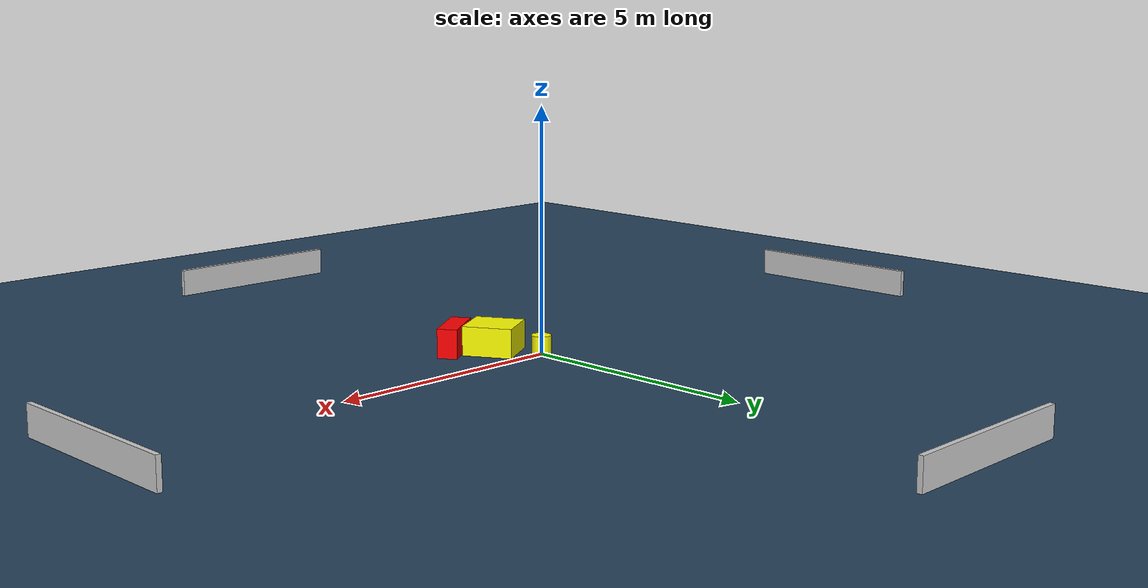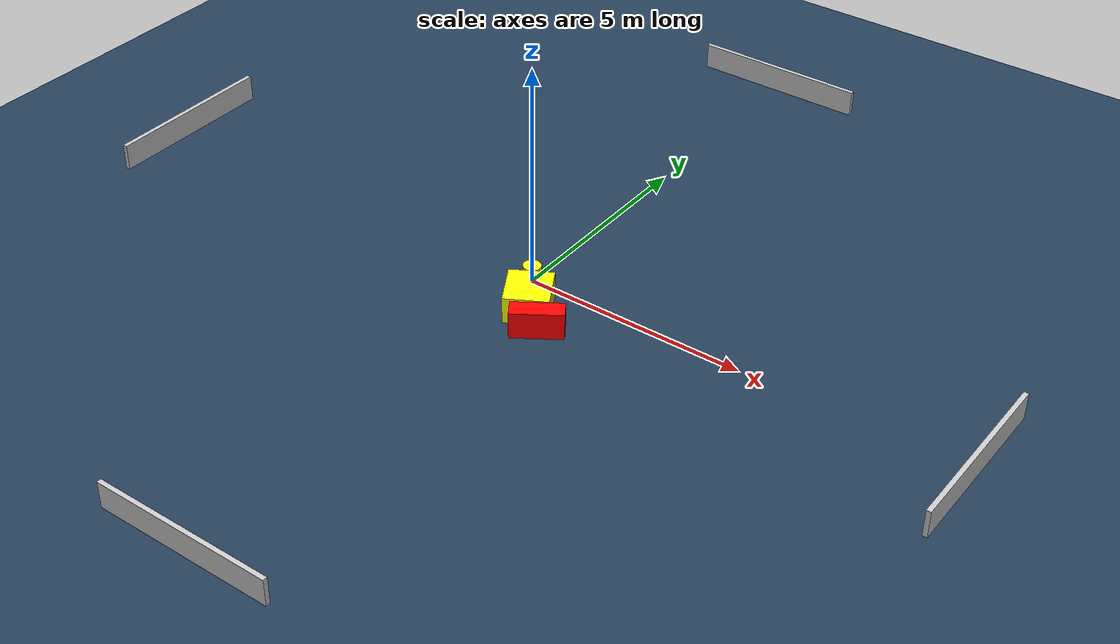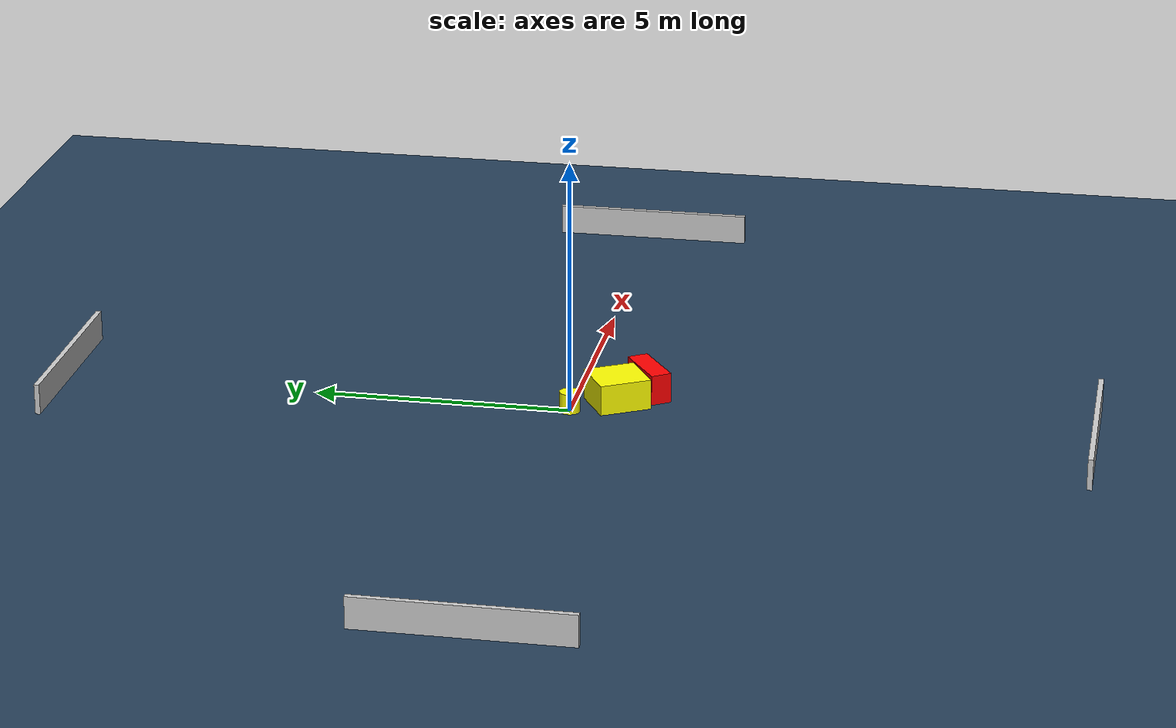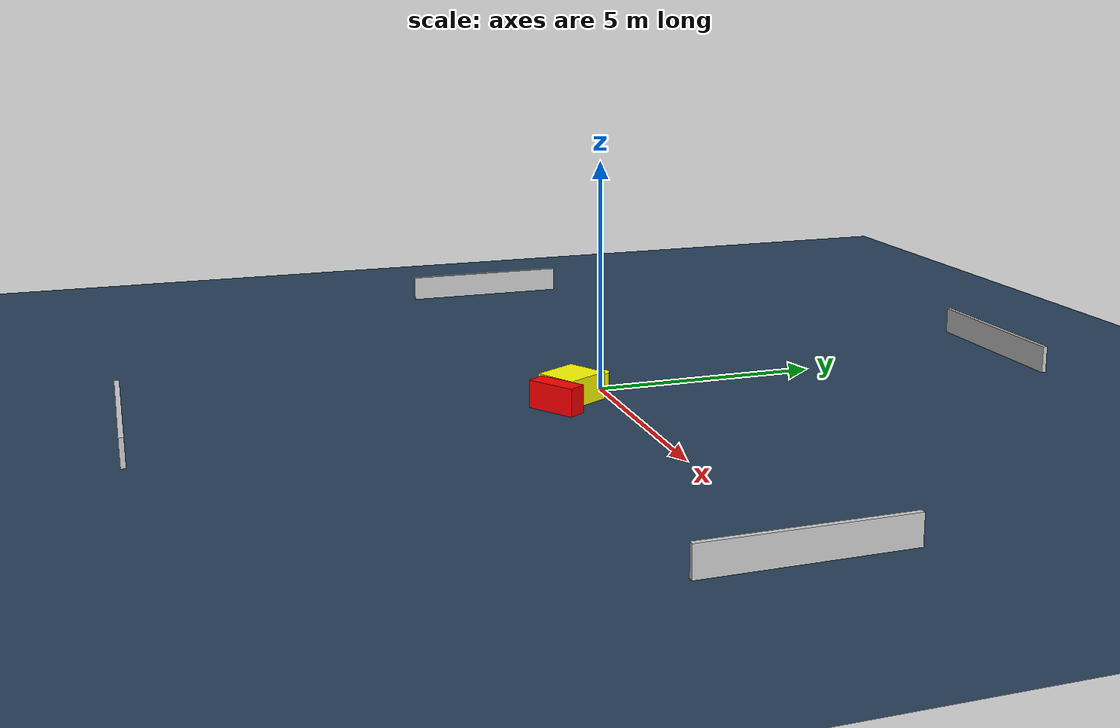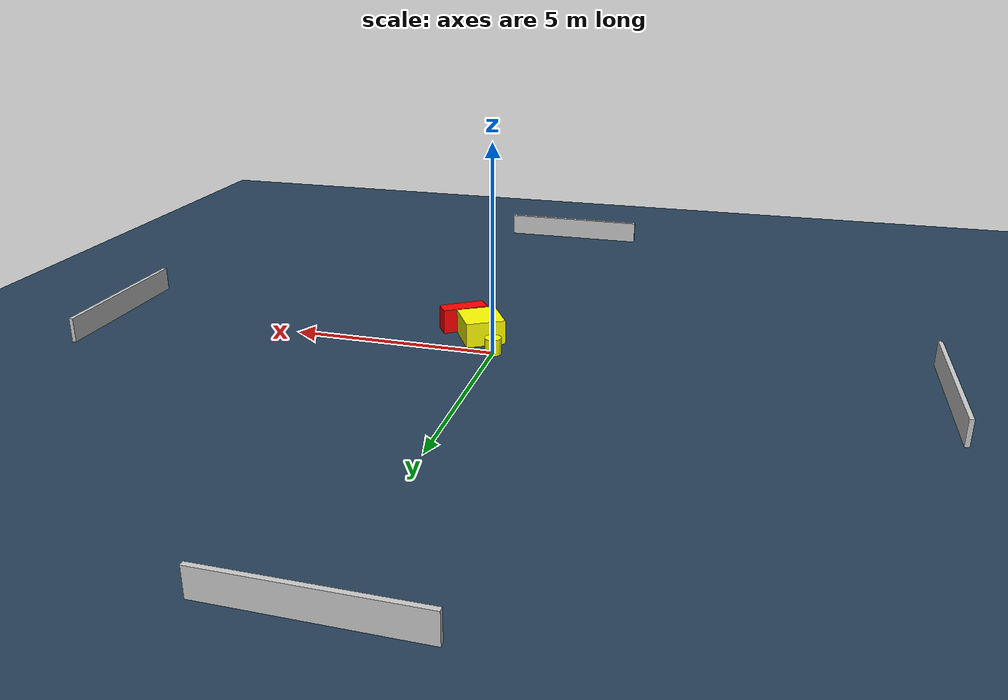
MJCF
<?xml version="1.0" ?>
<mujoco model="generated_environment">
  <option timestep="0.01" integrator="RK4" cone="elliptic"/>
  <default>
    <geom density="1"/>
  </default>
  <asset>
    <texture builtin="gradient" height="3072" name="skybox" rgb1="0.3 0.5 0.7" rgb2="0 0 0" type="skybox" width="512"/>
    <texture builtin="checker" height="300" name="groundplane" rgb1="0.2 0.3 0.4" rgb2="0.1 0.2 0.3" type="2d" width="300"/>
    <material name="groundplane" reflectance="0.2" texrepeat="5 5" texture="groundplane"/>
  </asset>
  <worldbody>
    <light dir="0 0 -1" directional="true" pos="0 0 1.5"/>
    <geom condim="3" friction="0.5 0.005 0.001" material="groundplane" name="floor" pos="0 0 0" size="0 0 0.05" type="plane"/>
    <body name="walls">
      <geom name="wall_1" condim="4" pos="-10.0 0.0 0.3" rgba="0.800000011920929 0.800000011920929 0.800000011920929 1.0" size="0.05 2.0 0.3" type="box"/>
      <geom name="wall_2" condim="4" pos="10.0 0.0 0.3" rgba="0.800000011920929 0.800000011920929 0.800000011920929 1.0" size="0.05 2.0 0.3" type="box"/>
      <geom name="wall_3" condim="4" pos="0.0 -10.0 0.3" rgba="0.800000011920929 0.800000011920929 0.800000011920929 1.0" size="2.0 0.05 0.3" type="box"/>
      <geom name="wall_4" condim="4" pos="0.0 10.0 0.3" rgba="0.800000011920929 0.800000011920929 0.800000011920929 1.0" size="2.0 0.05 0.3" type="box"/>
    </body>
    <body name="robot">
      <joint name="joint_x" type="slide" pos="0 0 0" axis="1 0 0"/>
      <joint name="joint_y" type="slide" pos="0 0 0" axis="0 1 0"/>
      <geom name="robot" type="cylinder" pos="0.0 0.0 0.2" size="0.2 0.2 0.0" mass="5.0" friction="1.0 0.005 0.0001" condim="4" rgba="1.0 1.0 0.0 1.0"/>
    </body>
    <body name="obstacle_1_movable">
      <geom name="obstacle_1_movable" condim="4" pos="0.5337468990388492 -0.8303080812742611 0.3" euler="0 0 119.76023858156283" friction="0.0 0.005 0.001" rgba="1.0 1.0 0.0 1.0" size="0.5134808972641673 0.4805498946487795 0.3" type="box" mass="0.1"/>
      <joint type="free"/>
    </body>
    <body name="obstacle_2_static">
      <geom name="obstacle_2_static" condim="4" pos="1.1340645151544972 -1.356804783528984 0.3" euler="0 0 213.49015645348345" friction="0.0 0.005 0.001" rgba="1.0 0.0 0.0 1.0" size="0.5622908493251989 0.20635636701074242 0.3" type="box"/>
    </body>
  </worldbody>
  <actuator>
    <motor name="actuator_x" joint="joint_x" gear="1" ctrlrange="-1 1"/>
    <motor name="actuator_y" joint="joint_y" gear="1" ctrlrange="-1 1"/>
  </actuator>
</mujoco>
